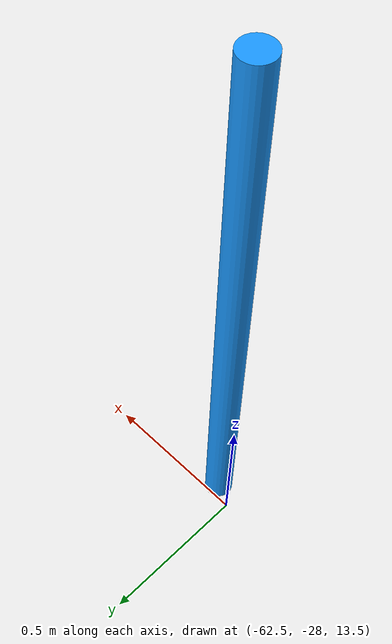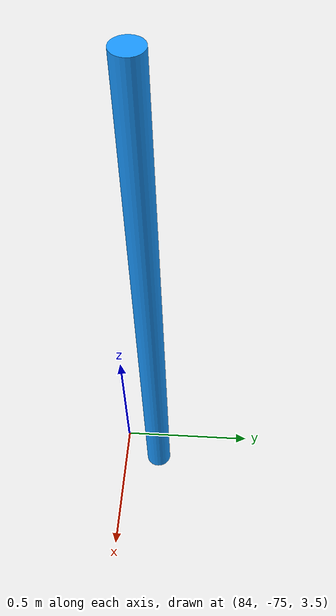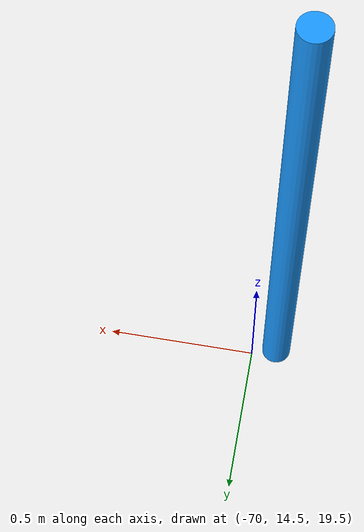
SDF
<sdf version="1.9">
 <world name="jezero_delta_rocks_k05_full">
  <physics name="1ms" type="ignored">
   <max_step_size>0.001</max_step_size>
   <real_time_factor>1</real_time_factor>
  </physics>
  <gravity>0 0 -3.721</gravity>
  <plugin filename="gz-sim-physics-system" name="gz::sim::systems::Physics"/>
  <plugin filename="gz-sim-user-commands-system" name="gz::sim::systems::UserCommands"/>
  <plugin filename="gz-sim-scene-broadcaster-system" name="gz::sim::systems::SceneBroadcaster"/>
  <scene><ambient>0.5 0.4 0.35 1</ambient><background>0.85 0.65 0.50 1</background><grid>false</grid></scene>
  <light type="directional" name="sun">
   <pose>0 0 100 0 0 0</pose>
   <diffuse>0.9 0.85 0.8 1</diffuse>
   <direction>-0.5 0.3 -0.8</direction>
  </light>
  <model name="waypoint_sol437">
   <static>true</static>
   <pose>84.0 -74.88 4.31 0 0 0</pose>
   <link name="link">
    <visual name="v">
     <geometry><cylinder><radius>0.05</radius><length>2.0</length></cylinder></geometry>
     <material><ambient>0.1 0.6 1 1</ambient><diffuse>0.1 0.6 1 1</diffuse></material>
    </visual>
   </link>
  </model>
  <model name="waypoint_sol441">
   <static>true</static>
   <pose>93.56 -43.06 7.86 0 0 0</pose>
   <link name="link">
    <visual name="v">
     <geometry><cylinder><radius>0.05</radius><length>2.0</length></cylinder></geometry>
     <material><ambient>0.1 0.6 1 1</ambient><diffuse>0.1 0.6 1 1</diffuse></material>
    </visual>
   </link>
  </model>
  <model name="waypoint_sol448">
   <static>true</static>
   <pose>-11.11 -44.23 9.66 0 0 0</pose>
   <link name="link">
    <visual name="v">
     <geometry><cylinder><radius>0.05</radius><length>2.0</length></cylinder></geometry>
     <material><ambient>0.1 0.6 1 1</ambient><diffuse>0.1 0.6 1 1</diffuse></material>
    </visual>
   </link>
  </model>
  <model name="waypoint_sol455">
   <static>true</static>
   <pose>-62.35 -28.13 14.26 0 0 0</pose>
   <link name="link">
    <visual name="v">
     <geometry><cylinder><radius>0.05</radius><length>2.0</length></cylinder></geometry>
     <material><ambient>0.1 0.6 1 1</ambient><diffuse>0.1 0.6 1 1</diffuse></material>
    </visual>
   </link>
  </model>
  <model name="waypoint_sol461">
   <static>true</static>
   <pose>-70.08 14.4 20.34 0 0 0</pose>
   <link name="link">
    <visual name="v">
     <geometry><cylinder><radius>0.05</radius><length>2.0</length></cylinder></geometry>
     <material><ambient>0.1 0.6 1 1</ambient><diffuse>0.1 0.6 1 1</diffuse></material>
    </visual>
   </link>
  </model>
 </world>
</sdf>
